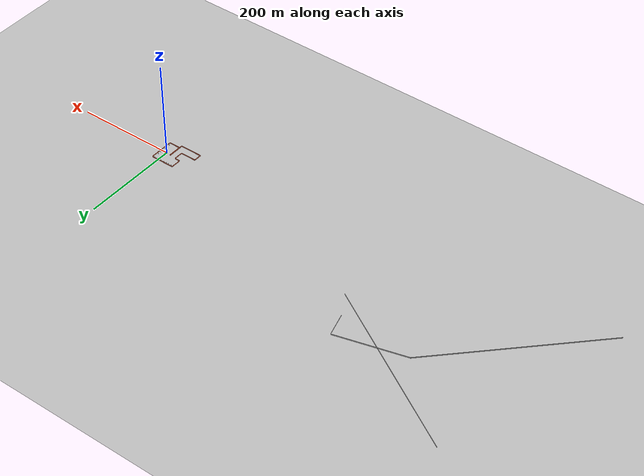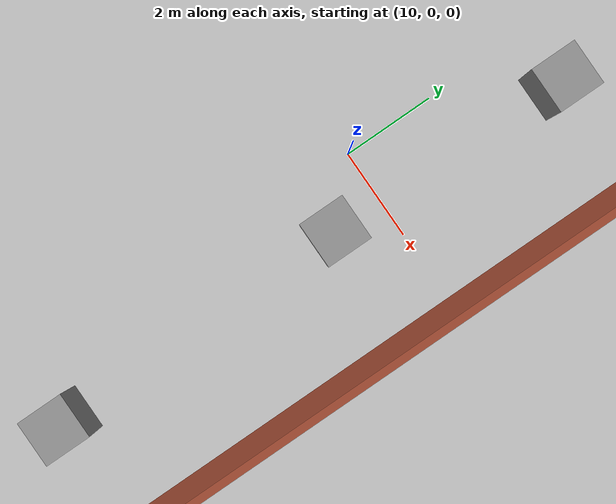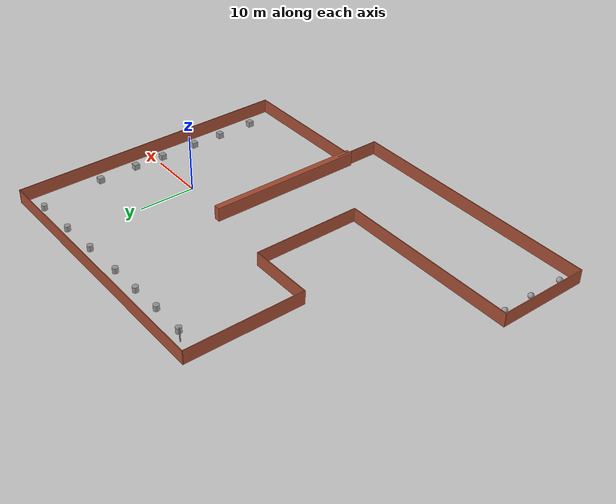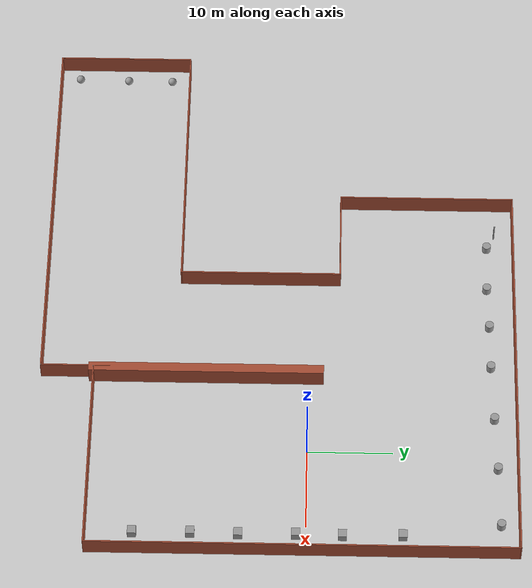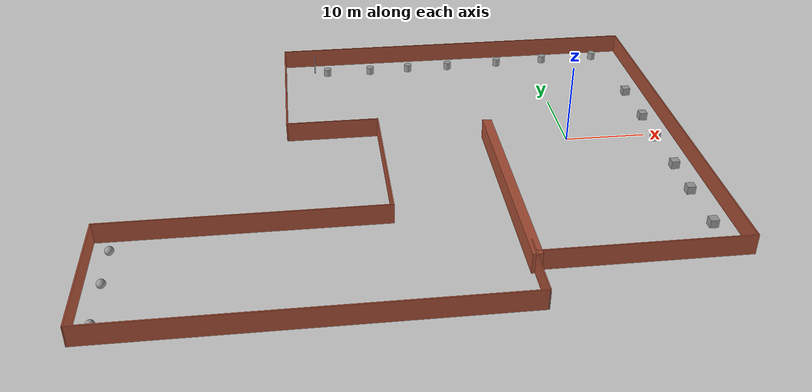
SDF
<sdf version="1.7">
 <world name="default">
  <light name="sun" type="directional">
   <pose>0 0 10 0 -0 0</pose>
   <diffuse>0.8 0.8 0.8 1</diffuse>
   <specular>0.2 0.2 0.2 1</specular>
   <attenuation>
    <range>1000</range>
    <constant>0.9</constant>
    <linear>0.01</linear>
    <quadratic>0.001</quadratic>
   </attenuation>
   <direction>-0.5 0.1 -0.9</direction>
   <spot><inner_angle>0</inner_angle><outer_angle>0</outer_angle><falloff>0</falloff></spot>
  </light>
  <model name="ground_plane">
   <static>1</static>
   <link name="link">
    <collision name="collision">
     <geometry><plane><normal>0 0 1</normal><size>100 100</size></plane></geometry>
     <surface><friction><ode><mu>100</mu><mu2>50</mu2></ode></friction></surface>
    </collision>
    <visual name="visual">
     <cast_shadows>0</cast_shadows>
     <geometry><plane><normal>0 0 1</normal><size>100 100</size></plane></geometry>
     <material>
      <script><uri>file://media/materials/scripts/gazebo.material</uri><name>Gazebo/Grey</name></script>
     </material>
    </visual>
   </link>
  </model>
  <gravity>0 0 -9.8</gravity>
  <magnetic_field>6e-06 2.3e-05 -4.2e-05</magnetic_field>
  <atmosphere type="adiabatic"/>
  <physics type="ode">
   <max_step_size>0.001</max_step_size>
   <real_time_factor>1</real_time_factor>
   <real_time_update_rate>1000</real_time_update_rate>
  </physics>
  <scene><ambient>0.4 0.4 0.4 1</ambient><background>0.7 0.7 0.7 1</background><shadows>1</shadows></scene>
  <spherical_coordinates>
   <surface_model>EARTH_WGS84</surface_model>
   <latitude_deg>0</latitude_deg>
   <longitude_deg>0</longitude_deg>
   <elevation>0</elevation>
   <heading_deg>0</heading_deg>
  </spherical_coordinates>
  <model name="wa1">
   <pose>-456.374 92.5918 0 0 -0 0</pose>
   <link name="Wall_11">
    <collision name="Wall_11_Collision">
     <geometry><box><size>377 0.15 2.5</size></box></geometry>
     <pose>0 0 1.25 0 -0 0</pose>
    </collision>
    <visual name="Wall_11_Visual">
     <pose>0 0 1.25 0 -0 0</pose>
     <geometry><box><size>377 0.15 2.5</size></box></geometry>
     <material>
      <script><uri>file://media/materials/scripts/gazebo.material</uri><name>Gazebo/Grey</name></script>
      <ambient>1 1 1 1</ambient>
     </material>
     <meta><layer>0</layer></meta>
    </visual>
    <pose>-199.053 100.215 0 0 -0 -0.523599</pose>
   </link>
   <link name="Wall_14">
    <collision name="Wall_14_Collision">
     <geometry><box><size>27.74 1.14 2.5</size></box></geometry>
     <pose>0 0 1.25 0 -0 0</pose>
    </collision>
    <visual name="Wall_14_Visual">
     <pose>0 0 1.25 0 -0 0</pose>
     <geometry><box><size>27.74 1.14 2.5</size></box></geometry>
     <material>
      <script><uri>file://media/materials/scripts/gazebo.material</uri><name>Gazebo/Bricks</name></script>
      <ambient>1 1 1 1</ambient>
     </material>
     <meta><layer>0</layer></meta>
    </visual>
    <pose>446.408 -104.618 0 0 -0 -1.5708</pose>
   </link>
   <link name="Wall_15">
    <collision name="Wall_15_Collision">
     <geometry><box><size>0.16 0.15 2.5</size></box></geometry>
     <pose>0 0 1.25 0 -0 0</pose>
    </collision>
    <visual name="Wall_15_Visual">
     <pose>0 0 1.25 0 -0 0</pose>
     <geometry><box><size>0.16 0.15 2.5</size></box></geometry>
     <material>
      <script><uri>file://media/materials/scripts/gazebo.material</uri><name>Gazebo/Grey</name></script>
      <ambient>1 1 1 1</ambient>
     </material>
     <meta><layer>0</layer></meta>
    </visual>
    <pose>446.413 -117.918 0 0 -0 -0.000408</pose>
   </link>
   <link name="Wall_16">
    <collision name="Wall_16_Collision">
     <geometry><box><size>23.75 0.15 2.5</size></box></geometry>
     <pose>0 0 1.25 0 -0 0</pose>
    </collision>
    <visual name="Wall_16_Visual">
     <pose>0 0 1.25 0 -0 0</pose>
     <geometry><box><size>23.75 0.15 2.5</size></box></geometry>
     <material>
      <script><uri>file://media/materials/scripts/gazebo.material</uri><name>Gazebo/Bricks</name></script>
      <ambient>1 1 1 1</ambient>
     </material>
     <meta><layer>0</layer></meta>
    </visual>
    <pose>458.219 -117.918 0 0 -0 0</pose>
   </link>
   <link name="Wall_17">
    <collision name="Wall_17_Collision">
     <geometry><box><size>50 0.15 2.5</size></box></geometry>
     <pose>0 0 1.25 0 -0 0</pose>
    </collision>
    <visual name="Wall_17_Visual">
     <pose>0 0 1.25 0 -0 0</pose>
     <geometry><box><size>50 0.15 2.5</size></box></geometry>
     <material>
      <script><uri>file://media/materials/scripts/gazebo.material</uri><name>Gazebo/Bricks</name></script>
      <ambient>1 1 1 1</ambient>
     </material>
     <meta><layer>0</layer></meta>
    </visual>
    <pose>470.019 -92.9928 0 0 -0 1.5708</pose>
   </link>
   <link name="Wall_18">
    <collision name="Wall_18_Collision">
     <geometry><box><size>48.75 0.15 2.5</size></box></geometry>
     <pose>0 0 1.25 0 -0 0</pose>
    </collision>
    <visual name="Wall_18_Visual">
     <pose>0 0 1.25 0 -0 0</pose>
     <geometry><box><size>48.75 0.15 2.5</size></box></geometry>
     <material>
      <script><uri>file://media/materials/scripts/gazebo.material</uri><name>Gazebo/Bricks</name></script>
      <ambient>1 1 1 1</ambient>
     </material>
     <meta><layer>0</layer></meta>
    </visual>
    <pose>445.719 -68.0678 0 0 -0 3.14159</pose>
   </link>
   <link name="Wall_19">
    <collision name="Wall_19_Collision">
     <geometry><box><size>21 0.15 2.5</size></box></geometry>
     <pose>0 0 1.25 0 -0 0</pose>
    </collision>
    <visual name="Wall_19_Visual">
     <pose>0 0 1.25 0 -0 0</pose>
     <geometry><box><size>21 0.15 2.5</size></box></geometry>
     <material>
      <script><uri>file://media/materials/scripts/gazebo.material</uri><name>Gazebo/Bricks</name></script>
      <ambient>1 1 1 1</ambient>
     </material>
     <meta><layer>0</layer></meta>
    </visual>
    <pose>421.419 -78.4928 0 0 -0 -1.5708</pose>
   </link>
   <link name="Wall_20">
    <collision name="Wall_20_Collision">
     <geometry><box><size>0.16 0.15 2.5</size></box></geometry>
     <pose>0 0 1.25 0 -0 0</pose>
    </collision>
    <visual name="Wall_20_Visual">
     <pose>0 0 1.25 0 -0 0</pose>
     <geometry><box><size>0.16 0.15 2.5</size></box></geometry>
     <material>
      <script><uri>file://media/materials/scripts/gazebo.material</uri><name>Gazebo/Grey</name></script>
      <ambient>1 1 1 1</ambient>
     </material>
     <meta><layer>0</layer></meta>
    </visual>
    <pose>421.424 -88.9178 0 0 -0 0</pose>
   </link>
   <link name="Wall_21">
    <collision name="Wall_21_Collision">
     <geometry><box><size>11.5 0.15 2.5</size></box></geometry>
     <pose>0 0 1.25 0 -0 0</pose>
    </collision>
    <visual name="Wall_21_Visual">
     <pose>0 0 1.25 0 -0 0</pose>
     <geometry><box><size>11.5 0.15 2.5</size></box></geometry>
     <material>
      <script><uri>file://media/materials/scripts/gazebo.material</uri><name>Gazebo/Bricks</name></script>
      <ambient>1 1 1 1</ambient>
     </material>
     <meta><layer>0</layer></meta>
    </visual>
    <pose>427.104 -88.9178 0 0 -0 0</pose>
   </link>
   <link name="Wall_22">
    <collision name="Wall_22_Collision">
     <geometry><box><size>0.16 0.15 2.5</size></box></geometry>
     <pose>0 0 1.25 0 -0 0</pose>
    </collision>
    <visual name="Wall_22_Visual">
     <pose>0 0 1.25 0 -0 0</pose>
     <geometry><box><size>0.16 0.15 2.5</size></box></geometry>
     <material>
      <script><uri>file://media/materials/scripts/gazebo.material</uri><name>Gazebo/Grey</name></script>
      <ambient>1 1 1 1</ambient>
     </material>
     <meta><layer>0</layer></meta>
    </visual>
    <pose>432.784 -88.9178 0 0 -0 0</pose>
   </link>
   <link name="Wall_23">
    <collision name="Wall_23_Collision">
     <geometry><box><size>19.25 0.15 2.5</size></box></geometry>
     <pose>0 0 1.25 0 -0 0</pose>
    </collision>
    <visual name="Wall_23_Visual">
     <pose>0 0 1.25 0 -0 0</pose>
     <geometry><box><size>19.25 0.15 2.5</size></box></geometry>
     <material>
      <script><uri>file://media/materials/scripts/gazebo.material</uri><name>Gazebo/Bricks</name></script>
      <ambient>1 1 1 1</ambient>
     </material>
     <meta><layer>0</layer></meta>
    </visual>
    <pose>432.789 -98.4678 0 0 -0 -1.5708</pose>
   </link>
   <link name="Wall_24">
    <collision name="Wall_24_Collision">
     <geometry><box><size>32.5 0.15 2.5</size></box></geometry>
     <pose>0 0 1.25 0 -0 0</pose>
    </collision>
    <visual name="Wall_24_Visual">
     <pose>0 0 1.25 0 -0 0</pose>
     <geometry><box><size>32.5 0.15 2.5</size></box></geometry>
     <material>
      <script><uri>file://media/materials/scripts/gazebo.material</uri><name>Gazebo/Bricks</name></script>
      <ambient>1 1 1 1</ambient>
     </material>
     <meta><layer>0</layer></meta>
    </visual>
    <pose>416.614 -108.018 0 0 -0 3.14159</pose>
   </link>
   <link name="Wall_25">
    <collision name="Wall_25_Collision">
     <geometry><box><size>16.25 0.15 2.5</size></box></geometry>
     <pose>0 0 1.25 0 -0 0</pose>
    </collision>
    <visual name="Wall_25_Visual">
     <pose>0 0 1.25 0 -0 0</pose>
     <geometry><box><size>16.25 0.15 2.5</size></box></geometry>
     <material>
      <script><uri>file://media/materials/scripts/gazebo.material</uri><name>Gazebo/Bricks</name></script>
      <ambient>1 1 1 1</ambient>
     </material>
     <meta><layer>0</layer></meta>
    </visual>
    <pose>400.439 -116.068 0 0 -0 -1.5708</pose>
   </link>
   <link name="Wall_26">
    <collision name="Wall_26_Collision">
     <geometry><box><size>46 0.15 2.5</size></box></geometry>
     <pose>0 0 1.25 0 -0 0</pose>
    </collision>
    <visual name="Wall_26_Visual">
     <pose>0 0 1.25 0 -0 0</pose>
     <geometry><box><size>46 0.15 2.5</size></box></geometry>
     <material>
      <script><uri>file://media/materials/scripts/gazebo.material</uri><name>Gazebo/Bricks</name></script>
      <ambient>1 1 1 1</ambient>
     </material>
     <meta><layer>0</layer></meta>
    </visual>
    <pose>423.364 -124.118 0 0 -0 0</pose>
   </link>
   <link name="Wall_27">
    <collision name="Wall_27_Collision">
     <geometry><box><size>0.16 0.15 2.5</size></box></geometry>
     <pose>0 0 1.25 0 -0 0</pose>
    </collision>
    <visual name="Wall_27_Visual">
     <pose>0 0 1.25 0 -0 0</pose>
     <geometry><box><size>0.16 0.15 2.5</size></box></geometry>
     <material>
      <script><uri>file://media/materials/scripts/gazebo.material</uri><name>Gazebo/Grey</name></script>
      <ambient>1 1 1 1</ambient>
     </material>
     <meta><layer>0</layer></meta>
    </visual>
    <pose>446.294 -124.118 0 0 -0 0</pose>
   </link>
   <link name="Wall_28">
    <collision name="Wall_28_Collision">
     <geometry><box><size>8.25 0.15 2.5</size></box></geometry>
     <pose>0 0 1.25 0 -0 0</pose>
    </collision>
    <visual name="Wall_28_Visual">
     <pose>0 0 1.25 0 -0 0</pose>
     <geometry><box><size>8.25 0.15 2.5</size></box></geometry>
     <material>
      <script><uri>file://media/materials/scripts/gazebo.material</uri><name>Gazebo/Bricks</name></script>
      <ambient>1 1 1 1</ambient>
     </material>
     <meta><layer>0</layer></meta>
    </visual>
    <pose>446.299 -120.068 0 0 -0 1.5708</pose>
   </link>
   <link name="Wall_30">
    <collision name="Wall_30_Collision">
     <geometry><box><size>0.16 0.15 2.5</size></box></geometry>
     <pose>0 0 1.25 0 -0 0</pose>
    </collision>
    <visual name="Wall_30_Visual">
     <pose>0 0 1.25 0 -0 0</pose>
     <geometry><box><size>0.16 0.15 2.5</size></box></geometry>
     <material>
      <script><uri>file://media/materials/scripts/gazebo.material</uri><name>Gazebo/Grey</name></script>
      <ambient>1 1 1 1</ambient>
     </material>
     <meta><layer>0</layer></meta>
    </visual>
    <pose>425.535 -70.3105 0 0 -0 0</pose>
   </link>
   <link name="Wall_6">
    <collision name="Wall_6_Collision">
     <geometry><box><size>361 0.15 2.5</size></box></geometry>
     <pose>0 0 1.25 0 -0 0</pose>
    </collision>
    <visual name="Wall_6_Visual">
     <pose>0 0 1.25 0 -0 0</pose>
     <geometry><box><size>361 0.15 2.5</size></box></geometry>
     <material>
      <script><uri>file://media/materials/scripts/gazebo.material</uri><name>Gazebo/Grey</name></script>
      <ambient>1 1 1 1</ambient>
     </material>
     <meta><layer>0</layer></meta>
    </visual>
    <pose>-342.408 -66.8439 0 0 -0 0.785398</pose>
   </link>
   <link name="Wall_7">
    <collision name="Wall_7_Collision">
     <geometry><box><size>0.16 0.15 2.5</size></box></geometry>
     <pose>0 0 1.25 0 -0 0</pose>
    </collision>
    <visual name="Wall_7_Visual">
     <pose>0 0 1.25 0 -0 0</pose>
     <geometry><box><size>0.16 0.15 2.5</size></box></geometry>
     <material>
      <script><uri>file://media/materials/scripts/gazebo.material</uri><name>Gazebo/Grey</name></script>
      <ambient>1 1 1 1</ambient>
     </material>
     <meta><layer>0</layer></meta>
    </visual>
    <pose>-214.823 60.7359 0 0 -0 0</pose>
   </link>
   <link name="Wall_8">
    <collision name="Wall_8_Collision">
     <geometry><box><size>144 0.15 2.5</size></box></geometry>
     <pose>0 0 1.25 0 -0 0</pose>
    </collision>
    <visual name="Wall_8_Visual">
     <pose>0 0 1.25 0 -0 0</pose>
     <geometry><box><size>144 0.15 2.5</size></box></geometry>
     <material>
      <script><uri>file://media/materials/scripts/gazebo.material</uri><name>Gazebo/Grey</name></script>
      <ambient>1 1 1 1</ambient>
     </material>
     <meta><layer>0</layer></meta>
    </visual>
    <pose>-145.344 79.3514 0 0 -0 0.261799</pose>
   </link>
   <link name="Wall_9">
    <collision name="Wall_9_Collision">
     <geometry><box><size>49.5 0.15 2.5</size></box></geometry>
     <pose>0 0 1.25 0 -0 0</pose>
    </collision>
    <visual name="Wall_9_Visual">
     <pose>0 0 1.25 0 -0 0</pose>
     <geometry><box><size>49.5 0.15 2.5</size></box></geometry>
     <material>
      <script><uri>file://media/materials/scripts/gazebo.material</uri><name>Gazebo/Grey</name></script>
      <ambient>1 1 1 1</ambient>
     </material>
     <meta><layer>0</layer></meta>
    </visual>
    <pose>-69.4832 74.1328 0 0 -0 -1.309</pose>
   </link>
   <static>1</static>
  </model>
  <model name="unit_cylinder">
   <pose>9.5889 22.4381 0.499998 3e-06 -2e-06 0</pose>
   <link name="link">
    <inertial>
     <mass>1</mass>
     <inertia><ixx>0.145833</ixx><ixy>0</ixy><ixz>0</ixz><iyy>0.145833</iyy><iyz>0</iyz><izz>0.125</izz></inertia>
    </inertial>
    <collision name="collision">
     <geometry><cylinder><radius>0.5</radius><length>1</length></cylinder></geometry>
    </collision>
    <visual name="visual">
     <geometry><cylinder><radius>0.5</radius><length>1</length></cylinder></geometry>
     <material>
      <script><name>Gazebo/Grey</name><uri>file://media/materials/scripts/gazebo.material</uri></script>
     </material>
    </visual>
   </link>
  </model>
  <model name="unit_cylinder_0">
   <pose>2.07717 22.2149 0.499993 -3e-06 3e-06 0</pose>
   <link name="link">
    <inertial>
     <mass>1</mass>
     <inertia><ixx>0.145833</ixx><ixy>0</ixy><ixz>0</ixz><iyy>0.145833</iyy><iyz>0</iyz><izz>0.125</izz></inertia>
    </inertial>
    <collision name="collision">
     <geometry><cylinder><radius>0.5</radius><length>1</length></cylinder></geometry>
    </collision>
    <visual name="visual">
     <geometry><cylinder><radius>0.5</radius><length>1</length></cylinder></geometry>
     <material>
      <script><name>Gazebo/Grey</name><uri>file://media/materials/scripts/gazebo.material</uri></script>
     </material>
    </visual>
   </link>
  </model>
  <model name="unit_cylinder_1">
   <pose>-4.69249 21.9176 0.499998 3e-06 -3e-06 0</pose>
   <link name="link">
    <inertial>
     <mass>1</mass>
     <inertia><ixx>0.145833</ixx><ixy>0</ixy><ixz>0</ixz><iyy>0.145833</iyy><iyz>0</iyz><izz>0.125</izz></inertia>
    </inertial>
    <collision name="collision">
     <geometry><cylinder><radius>0.5</radius><length>1</length></cylinder></geometry>
    </collision>
    <visual name="visual">
     <geometry><cylinder><radius>0.5</radius><length>1</length></cylinder></geometry>
     <material>
      <script><name>Gazebo/Grey</name><uri>file://media/materials/scripts/gazebo.material</uri></script>
     </material>
    </visual>
   </link>
  </model>
  <model name="unit_cylinder_2">
   <pose>-11.9078 21.6201 0.499992 -3e-06 3e-06 0</pose>
   <link name="link">
    <inertial>
     <mass>1</mass>
     <inertia><ixx>0.145833</ixx><ixy>0</ixy><ixz>0</ixz><iyy>0.145833</iyy><iyz>0</iyz><izz>0.125</izz></inertia>
    </inertial>
    <collision name="collision">
     <geometry><cylinder><radius>0.5</radius><length>1</length></cylinder></geometry>
    </collision>
    <visual name="visual">
     <geometry><cylinder><radius>0.5</radius><length>1</length></cylinder></geometry>
     <material>
      <script><name>Gazebo/Grey</name><uri>file://media/materials/scripts/gazebo.material</uri></script>
     </material>
    </visual>
   </link>
  </model>
  <model name="unit_cylinder_3">
   <pose>-17.635 21.5456 0.499998 3e-06 -3e-06 0</pose>
   <link name="link">
    <inertial>
     <mass>1</mass>
     <inertia><ixx>0.145833</ixx><ixy>0</ixy><ixz>0</ixz><iyy>0.145833</iyy><iyz>0</iyz><izz>0.125</izz></inertia>
    </inertial>
    <collision name="collision">
     <geometry><cylinder><radius>0.5</radius><length>1</length></cylinder></geometry>
    </collision>
    <visual name="visual">
     <geometry><cylinder><radius>0.5</radius><length>1</length></cylinder></geometry>
     <material>
      <script><name>Gazebo/Grey</name><uri>file://media/materials/scripts/gazebo.material</uri></script>
     </material>
    </visual>
   </link>
  </model>
  <model name="unit_cylinder_4">
   <pose>-23.0657 21.3225 0.499992 -3e-06 3e-06 0</pose>
   <link name="link">
    <inertial>
     <mass>1</mass>
     <inertia><ixx>0.145833</ixx><ixy>0</ixy><ixz>0</ixz><iyy>0.145833</iyy><iyz>0</iyz><izz>0.125</izz></inertia>
    </inertial>
    <collision name="collision">
     <geometry><cylinder><radius>0.5</radius><length>1</length></cylinder></geometry>
    </collision>
    <visual name="visual">
     <geometry><cylinder><radius>0.5</radius><length>1</length></cylinder></geometry>
     <material>
      <script><name>Gazebo/Grey</name><uri>file://media/materials/scripts/gazebo.material</uri></script>
     </material>
    </visual>
   </link>
  </model>
  <model name="unit_cylinder_5">
   <pose>-29.0913 21.3969 0.499998 3e-06 -3e-06 0</pose>
   <link name="link">
    <inertial>
     <mass>1</mass>
     <inertia><ixx>0.145833</ixx><ixy>0</ixy><ixz>0</ixz><iyy>0.145833</iyy><iyz>0</iyz><izz>0.125</izz></inertia>
    </inertial>
    <collision name="collision">
     <geometry><cylinder><radius>0.5</radius><length>1</length></cylinder></geometry>
    </collision>
    <visual name="visual">
     <geometry><cylinder><radius>0.5</radius><length>1</length></cylinder></geometry>
     <material>
      <script><name>Gazebo/Grey</name><uri>file://media/materials/scripts/gazebo.material</uri></script>
     </material>
    </visual>
   </link>
  </model>
  <model name="unit_box">
   <pose>11.1511 11.1315 0.499995 0 1e-05 0</pose>
   <link name="link">
    <inertial>
     <mass>1</mass>
     <inertia>
      <ixx>0.166667</ixx>
      <ixy>0</ixy>
      <ixz>0</ixz>
      <iyy>0.166667</iyy>
      <iyz>0</iyz>
      <izz>0.166667</izz>
     </inertia>
    </inertial>
    <collision name="collision"><geometry><box><size>1 1 1</size></box></geometry></collision>
    <visual name="visual">
     <geometry><box><size>1 1 1</size></box></geometry>
     <material>
      <script><name>Gazebo/Grey</name><uri>file://media/materials/scripts/gazebo.material</uri></script>
     </material>
    </visual>
   </link>
  </model>
  <model name="unit_box_0">
   <pose>11.2272 4.21397 0.499995 -1e-05 -0 -0</pose>
   <link name="link">
    <inertial>
     <mass>1</mass>
     <inertia>
      <ixx>0.166667</ixx>
      <ixy>0</ixy>
      <ixz>0</ixz>
      <iyy>0.166667</iyy>
      <iyz>0</iyz>
      <izz>0.166667</izz>
     </inertia>
    </inertial>
    <collision name="collision"><geometry><box><size>1 1 1</size></box></geometry></collision>
    <visual name="visual">
     <geometry><box><size>1 1 1</size></box></geometry>
     <material>
      <script><name>Gazebo/Grey</name><uri>file://media/materials/scripts/gazebo.material</uri></script>
     </material>
    </visual>
   </link>
  </model>
  <model name="unit_box_1">
   <pose>11.1511 -1.14181 0.499995 0 1e-05 0</pose>
   <link name="link">
    <inertial>
     <mass>1</mass>
     <inertia>
      <ixx>0.166667</ixx>
      <ixy>0</ixy>
      <ixz>0</ixz>
      <iyy>0.166667</iyy>
      <iyz>0</iyz>
      <izz>0.166667</izz>
     </inertia>
    </inertial>
    <collision name="collision"><geometry><box><size>1 1 1</size></box></geometry></collision>
    <visual name="visual">
     <geometry><box><size>1 1 1</size></box></geometry>
     <material>
      <script><name>Gazebo/Grey</name><uri>file://media/materials/scripts/gazebo.material</uri></script>
     </material>
    </visual>
   </link>
  </model>
  <model name="unit_box_2">
   <pose>11.2272 -7.76225 0.499995 -1e-05 -0 -0</pose>
   <link name="link">
    <inertial>
     <mass>1</mass>
     <inertia>
      <ixx>0.166667</ixx>
      <ixy>0</ixy>
      <ixz>0</ixz>
      <iyy>0.166667</iyy>
      <iyz>0</iyz>
      <izz>0.166667</izz>
     </inertia>
    </inertial>
    <collision name="collision"><geometry><box><size>1 1 1</size></box></geometry></collision>
    <visual name="visual">
     <geometry><box><size>1 1 1</size></box></geometry>
     <material>
      <script><name>Gazebo/Grey</name><uri>file://media/materials/scripts/gazebo.material</uri></script>
     </material>
    </visual>
   </link>
  </model>
  <model name="unit_sphere">
   <pose>-53.921 -17.6954 0.5 0 -0 0</pose>
   <link name="link">
    <inertial>
     <mass>1</mass>
     <inertia><ixx>0.1</ixx><ixy>0</ixy><ixz>0</ixz><iyy>0.1</iyy><iyz>0</iyz><izz>0.1</izz></inertia>
    </inertial>
    <collision name="collision"><geometry><sphere><radius>0.5</radius></sphere></geometry></collision>
    <visual name="visual">
     <geometry><sphere><radius>0.5</radius></sphere></geometry>
     <material>
      <script><name>Gazebo/Grey</name><uri>file://media/materials/scripts/gazebo.material</uri></script>
     </material>
    </visual>
   </link>
  </model>
  <model name="unit_sphere_0">
   <pose>-53.9587 -23.16 0.5 0 -0 0</pose>
   <link name="link">
    <inertial>
     <mass>1</mass>
     <inertia><ixx>0.1</ixx><ixy>0</ixy><ixz>0</ixz><iyy>0.1</iyy><iyz>0</iyz><izz>0.1</izz></inertia>
    </inertial>
    <collision name="collision"><geometry><sphere><radius>0.5</radius></sphere></geometry></collision>
    <visual name="visual">
     <geometry><sphere><radius>0.5</radius></sphere></geometry>
     <material>
      <script><name>Gazebo/Grey</name><uri>file://media/materials/scripts/gazebo.material</uri></script>
     </material>
    </visual>
   </link>
  </model>
  <model name="unit_sphere_1">
   <pose>-54.0964 -29.2556 0.5 0 -0 0</pose>
   <link name="link">
    <inertial>
     <mass>1</mass>
     <inertia><ixx>0.1</ixx><ixy>0</ixy><ixz>0</ixz><iyy>0.1</iyy><iyz>0</iyz><izz>0.1</izz></inertia>
    </inertial>
    <collision name="collision"><geometry><sphere><radius>0.5</radius></sphere></geometry></collision>
    <visual name="visual">
     <geometry><sphere><radius>0.5</radius></sphere></geometry>
     <material>
      <script><name>Gazebo/Grey</name><uri>file://media/materials/scripts/gazebo.material</uri></script>
     </material>
    </visual>
   </link>
  </model>
  <model name="unit_box_3">
   <pose>11.1146 -13.2512 0.499995 -1e-05 -0 0</pose>
   <link name="link">
    <inertial>
     <mass>1</mass>
     <inertia>
      <ixx>0.166667</ixx>
      <ixy>0</ixy>
      <ixz>0</ixz>
      <iyy>0.166667</iyy>
      <iyz>0</iyz>
      <izz>0.166667</izz>
     </inertia>
    </inertial>
    <collision name="collision"><geometry><box><size>1 1 1</size></box></geometry></collision>
    <visual name="visual">
     <geometry><box><size>1 1 1</size></box></geometry>
     <material>
      <script><name>Gazebo/Grey</name><uri>file://media/materials/scripts/gazebo.material</uri></script>
     </material>
    </visual>
   </link>
  </model>
  <model name="unit_box_4">
   <pose>11.1871 -19.9311 0.5 0 -0 0</pose>
   <link name="link">
    <inertial>
     <mass>1</mass>
     <inertia>
      <ixx>0.166667</ixx>
      <ixy>0</ixy>
      <ixz>0</ixz>
      <iyy>0.166667</iyy>
      <iyz>0</iyz>
      <izz>0.166667</izz>
     </inertia>
    </inertial>
    <collision name="collision"><geometry><box><size>1 1 1</size></box></geometry></collision>
    <visual name="visual">
     <geometry><box><size>1 1 1</size></box></geometry>
     <material>
      <script><name>Gazebo/Grey</name><uri>file://media/materials/scripts/gazebo.material</uri></script>
     </material>
    </visual>
   </link>
  </model>
 </world>
</sdf>
